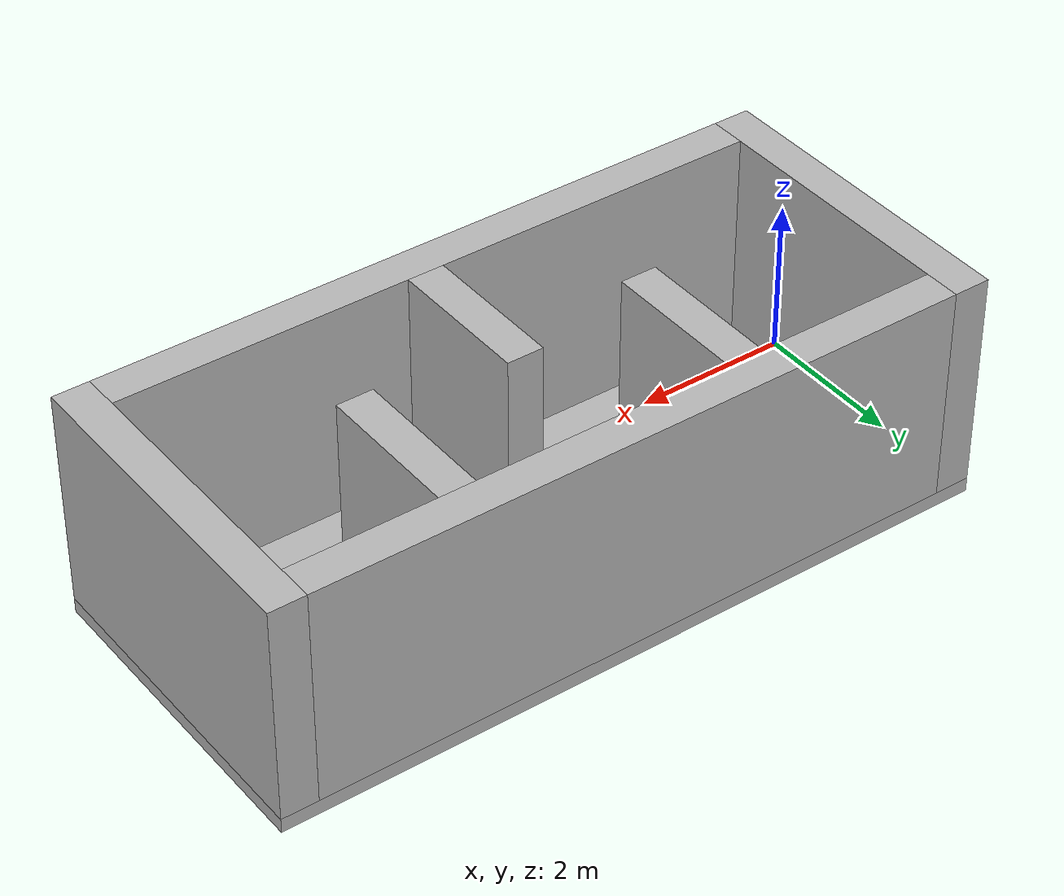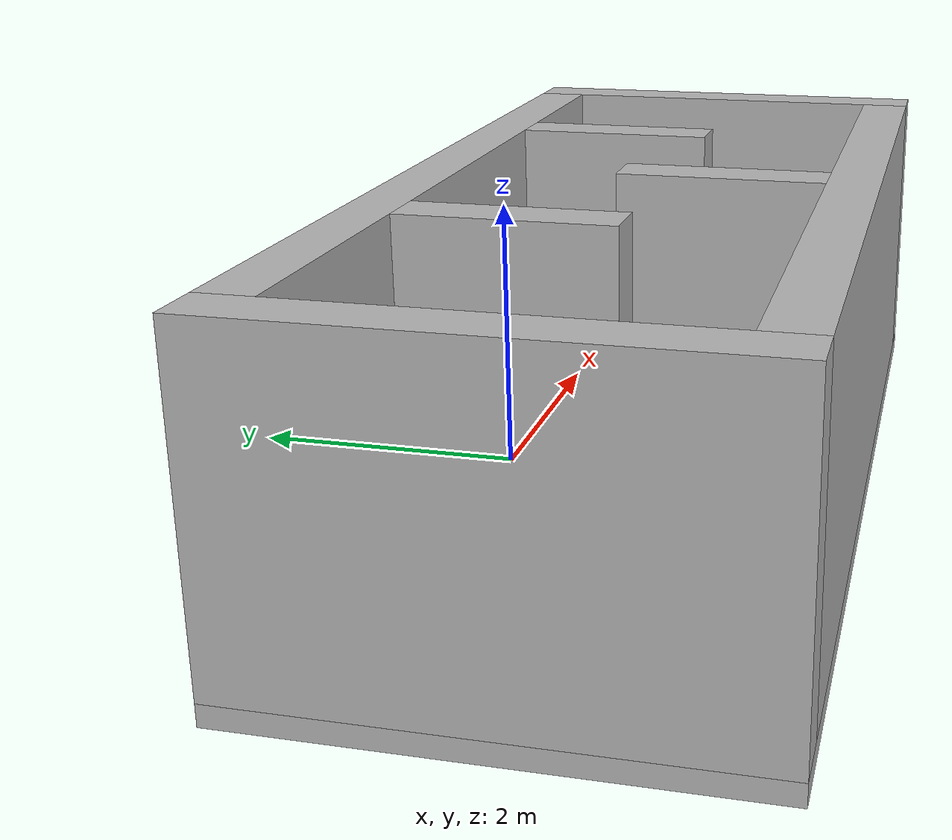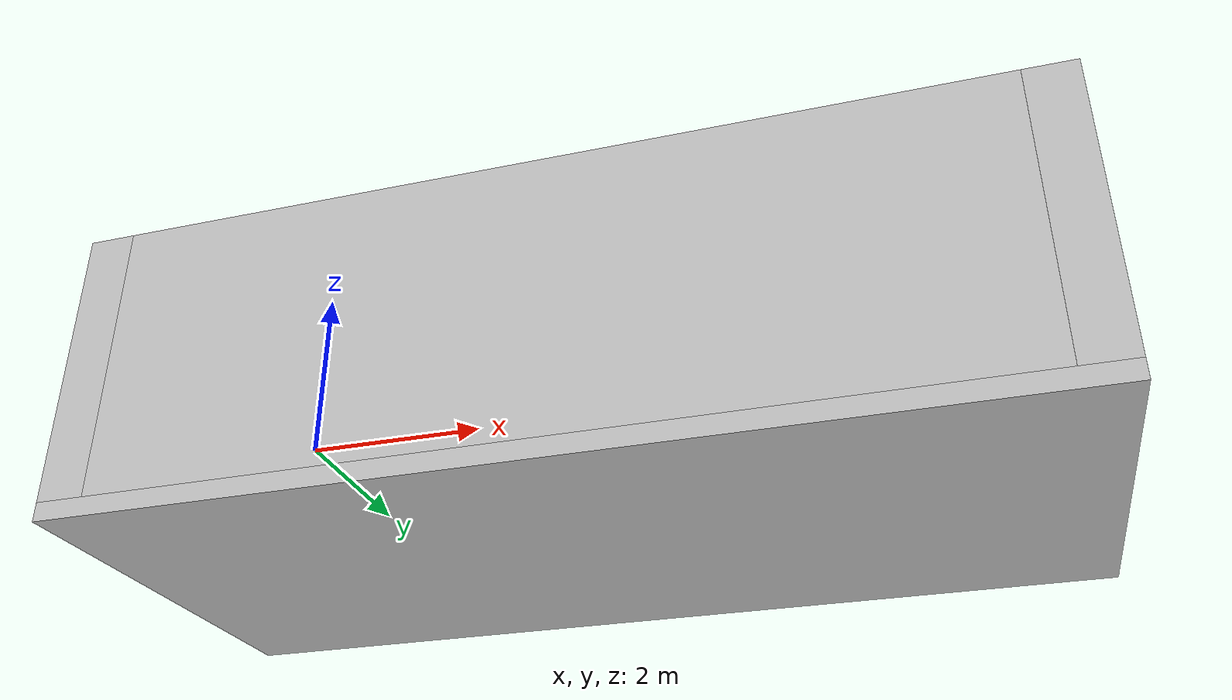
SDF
<?xml version="1.0"?>
<sdf version="1.7">
  <model name="room_w_lidar">
    <static>1</static>
    <link name="bottom_wall">
      <pose frame="">3.5 -0.25 -1.6 0 0 0</pose>
      <visual name="wall">
        <geometry>
          <box>
            <size>10 4.5 0.2</size>
          </box>
        </geometry>
      </visual>
      <collision name="wall">
        <geometry>
          <box>
            <size>10 4.5 0.2</size>
          </box>
        </geometry>
      </collision>
    </link>
    <link name="left_wall">
      <pose frame="">3.5 1.75 0 0 0 0</pose>
      <visual name="wall">
        <geometry>
          <box>
            <size>9 0.5 3</size>
          </box>
        </geometry>
      </visual>
      <collision name="wall">
        <geometry>
          <box>
            <size>9 0.5 3</size>
          </box>
        </geometry>
      </collision>
    </link>
    <link name="right_wall">
      <pose frame="">3.5 -2.25 0 0 0 0</pose>
      <visual name="wall">
        <geometry>
          <box>
            <size>9 0.5 3</size>
          </box>
        </geometry>
      </visual>
      <collision name="wall">
        <geometry>
          <box>
            <size>9 0.5 3</size>
          </box>
        </geometry>
      </collision>
    </link>
    <link name="back_wall">
      <pose frame="">-1.25 -0.25 0 0 0 0</pose>
      <visual name="wall">
        <geometry>
          <box>
            <size>0.5 4.5 3</size>
          </box>
        </geometry>
      </visual>
      <collision name="wall">
        <geometry>
          <box>
            <size>0.5 4.5 3</size>
          </box>
        </geometry>
      </collision>
    </link>
    <link name="front_wall">
      <pose frame="">8.25 -0.25 0 0 0 0</pose>
      <visual name="wall">
        <geometry>
          <box>
            <size>0.5 4.5 3</size>
          </box>
        </geometry>
      </visual>
      <collision name="wall">
        <geometry>
          <box>
            <size>0.5 4.5 3</size>
          </box>
        </geometry>
      </collision>
    </link>
    <link name="slalom_1">
      <pose frame="">1.75 0.5 0 0 0 0</pose>
      <visual name="wall">
        <geometry>
          <box>
            <size>0.5 2 3</size>
          </box>
        </geometry>
      </visual>
      <collision name="wall">
        <geometry>
          <box>
            <size>0.5 2 3</size>
          </box>
        </geometry>
      </collision>
    </link>
    <link name="slalom_2">
      <pose frame="">3.75 -1 0 0 0 0</pose>
      <visual name="wall">
        <geometry>
          <box>
            <size>0.5 2 3</size>
          </box>
        </geometry>
      </visual>
      <collision name="wall">
        <geometry>
          <box>
            <size>0.5 2 3</size>
          </box>
        </geometry>
      </collision>
    </link>
    <link name="slalom_3">
      <pose frame="">5.75 0.5 0 0 0 0</pose>
      <visual name="wall">
        <geometry>
          <box>
            <size>0.5 2 3</size>
          </box>
        </geometry>
      </visual>
      <collision name="wall">
        <geometry>
          <box>
            <size>0.5 2 3</size>
          </box>
        </geometry>
      </collision>
    </link>
  </model>
</sdf>
